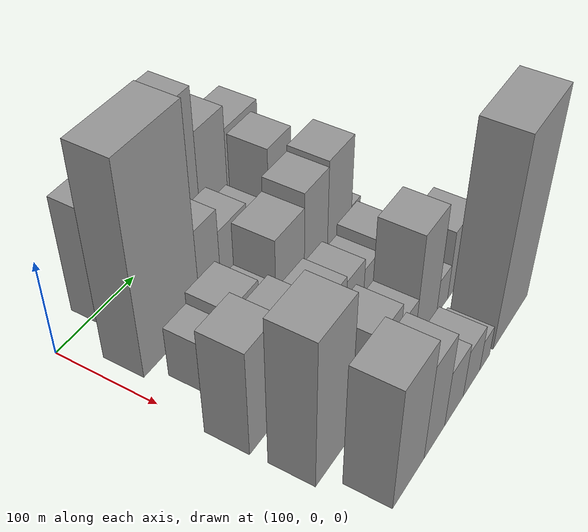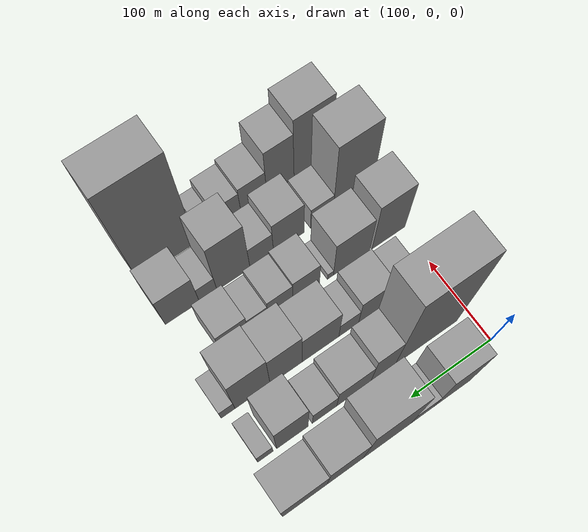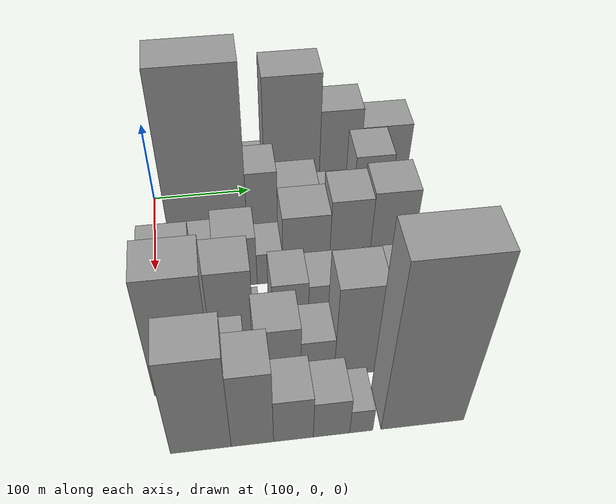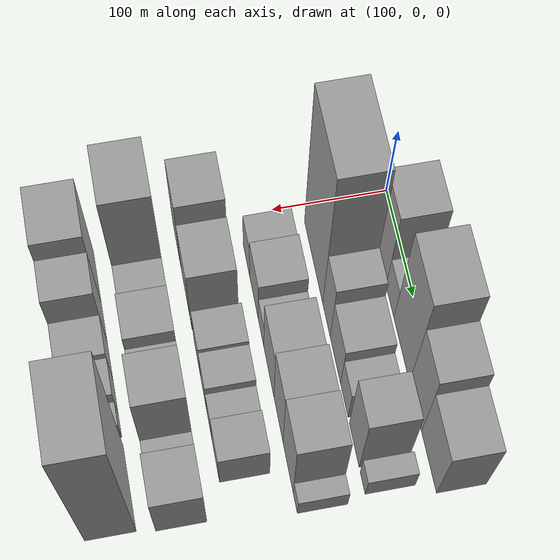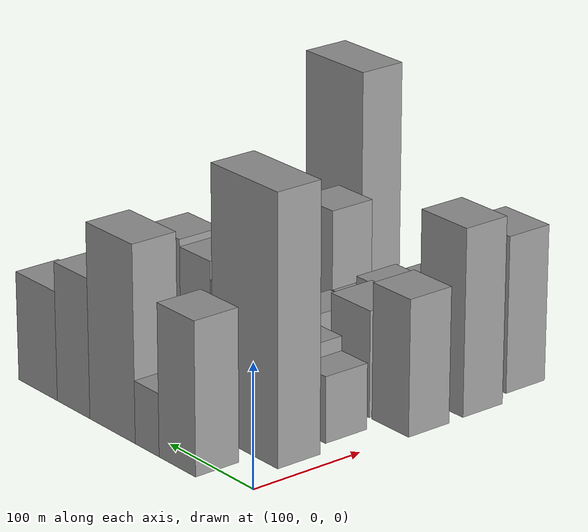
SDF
<sdf version="1.6">
 <world name="default">
  <model name="building_23">
   <static>1</static>
   <pose>100.0000 64.5372 0 0.000000 0.000000 0.000000</pose>
   <link name="link">
    <pose>0 0 61.50 0 0 0</pose>
    <collision name="collision"><geometry><box><size>40.0000 43.9700 123.0000</size></box></geometry></collision>
    <visual name="visual">
     <cast_shadows>0</cast_shadows>
     <geometry><box><size>40.0000 43.9700 123.0000</size></box></geometry>
     <material>
      <script>
       <uri>model://grey_wall/materials/scripts</uri>
       <uri>model://grey_wall/materials/textures</uri>
       <name>vrc/grey_wall</name>
      </script>
     </material>
    </visual>
   </link>
  </model>
  <model name="building_24">
   <static>1</static>
   <pose>100.0000 101.1904 0 0.000000 0.000000 0.000000</pose>
   <link name="link">
    <pose>0 0 25.50 0 0 0</pose>
    <collision name="collision"><geometry><box><size>40.0000 29.3365 51.0000</size></box></geometry></collision>
    <visual name="visual">
     <cast_shadows>0</cast_shadows>
     <geometry><box><size>40.0000 29.3365 51.0000</size></box></geometry>
     <material>
      <script>
       <uri>model://grey_wall/materials/scripts</uri>
       <uri>model://grey_wall/materials/textures</uri>
       <name>vrc/grey_wall</name>
      </script>
     </material>
    </visual>
   </link>
  </model>
  <model name="building_25">
   <static>1</static>
   <pose>100.0000 144.4242 0 0.000000 0.000000 0.000000</pose>
   <link name="link">
    <pose>0 0 79.50 0 0 0</pose>
    <collision name="collision"><geometry><box><size>40.0000 57.1311 159.0000</size></box></geometry></collision>
    <visual name="visual">
     <cast_shadows>0</cast_shadows>
     <geometry><box><size>40.0000 57.1311 159.0000</size></box></geometry>
     <material>
      <script>
       <uri>model://grey_wall/materials/scripts</uri>
       <uri>model://grey_wall/materials/textures</uri>
       <name>vrc/grey_wall</name>
      </script>
     </material>
    </visual>
   </link>
  </model>
  <model name="building_26">
   <static>1</static>
   <pose>100.0000 194.0996 0 0.000000 0.000000 0.000000</pose>
   <link name="link">
    <pose>0 0 57.00 0 0 0</pose>
    <collision name="collision"><geometry><box><size>40.0000 42.2197 114.0000</size></box></geometry></collision>
    <visual name="visual">
     <cast_shadows>0</cast_shadows>
     <geometry><box><size>40.0000 42.2197 114.0000</size></box></geometry>
     <material>
      <script>
       <uri>model://grey_wall/materials/scripts</uri>
       <uri>model://grey_wall/materials/textures</uri>
       <name>vrc/grey_wall</name>
      </script>
     </material>
    </visual>
   </link>
  </model>
  <model name="building_27">
   <static>1</static>
   <pose>100.0000 240.7146 0 0.000000 0.000000 0.000000</pose>
   <link name="link">
    <pose>0 0 45.00 0 0 0</pose>
    <collision name="collision"><geometry><box><size>40.0000 51.0102 90.0000</size></box></geometry></collision>
    <visual name="visual">
     <cast_shadows>0</cast_shadows>
     <geometry><box><size>40.0000 51.0102 90.0000</size></box></geometry>
     <material>
      <script>
       <uri>model://grey_wall/materials/scripts</uri>
       <uri>model://grey_wall/materials/textures</uri>
       <name>vrc/grey_wall</name>
      </script>
     </material>
    </visual>
   </link>
  </model>
  <model name="building_74">
   <static>1</static>
   <pose>155.0000 54.4046 0 0.000000 0.000000 0.000000</pose>
   <link name="link">
    <pose>0 0 108.00 0 0 0</pose>
    <collision name="collision"><geometry><box><size>40.0000 77.1258 216.0000</size></box></geometry></collision>
    <visual name="visual">
     <cast_shadows>0</cast_shadows>
     <geometry><box><size>40.0000 77.1258 216.0000</size></box></geometry>
     <material>
      <script>
       <uri>model://grey_wall/materials/scripts</uri>
       <uri>model://grey_wall/materials/textures</uri>
       <name>vrc/grey_wall</name>
      </script>
     </material>
    </visual>
   </link>
  </model>
  <model name="building_75">
   <static>1</static>
   <pose>155.0000 108.0499 0 0.000000 0.000000 0.000000</pose>
   <link name="link">
    <pose>0 0 46.50 0 0 0</pose>
    <collision name="collision"><geometry><box><size>40.0000 30.1649 93.0000</size></box></geometry></collision>
    <visual name="visual">
     <cast_shadows>0</cast_shadows>
     <geometry><box><size>40.0000 30.1649 93.0000</size></box></geometry>
     <material>
      <script>
       <uri>model://grey_wall/materials/scripts</uri>
       <uri>model://grey_wall/materials/textures</uri>
       <name>vrc/grey_wall</name>
      </script>
     </material>
    </visual>
   </link>
  </model>
  <model name="building_76">
   <static>1</static>
   <pose>155.0000 143.5891 0 0.000000 0.000000 0.000000</pose>
   <link name="link">
    <pose>0 0 34.50 0 0 0</pose>
    <collision name="collision"><geometry><box><size>40.0000 40.9134 69.0000</size></box></geometry></collision>
    <visual name="visual">
     <cast_shadows>0</cast_shadows>
     <geometry><box><size>40.0000 40.9134 69.0000</size></box></geometry>
     <material>
      <script>
       <uri>model://grey_wall/materials/scripts</uri>
       <uri>model://grey_wall/materials/textures</uri>
       <name>vrc/grey_wall</name>
      </script>
     </material>
    </visual>
   </link>
  </model>
  <model name="building_77">
   <static>1</static>
   <pose>155.0000 178.4997 0 0.000000 0.000000 0.000000</pose>
   <link name="link">
    <pose>0 0 25.50 0 0 0</pose>
    <collision name="collision"><geometry><box><size>40.0000 28.9078 51.0000</size></box></geometry></collision>
    <visual name="visual">
     <cast_shadows>0</cast_shadows>
     <geometry><box><size>40.0000 28.9078 51.0000</size></box></geometry>
     <material>
      <script>
       <uri>model://grey_wall/materials/scripts</uri>
       <uri>model://grey_wall/materials/textures</uri>
       <name>vrc/grey_wall</name>
      </script>
     </material>
    </visual>
   </link>
  </model>
  <model name="building_78">
   <static>1</static>
   <pose>155.0000 216.4168 0 0.000000 0.000000 0.000000</pose>
   <link name="link">
    <pose>0 0 51.00 0 0 0</pose>
    <collision name="collision"><geometry><box><size>40.0000 36.9264 102.0000</size></box></geometry></collision>
    <visual name="visual">
     <cast_shadows>0</cast_shadows>
     <geometry><box><size>40.0000 36.9264 102.0000</size></box></geometry>
     <material>
      <script>
       <uri>model://grey_wall/materials/scripts</uri>
       <uri>model://grey_wall/materials/textures</uri>
       <name>vrc/grey_wall</name>
      </script>
     </material>
    </visual>
   </link>
  </model>
  <model name="building_79">
   <static>1</static>
   <pose>155.0000 247.8972 0 0.000000 0.000000 0.000000</pose>
   <link name="link">
    <pose>0 0 16.50 0 0 0</pose>
    <collision name="collision"><geometry><box><size>40.0000 18.0346 33.0000</size></box></geometry></collision>
    <visual name="visual">
     <cast_shadows>0</cast_shadows>
     <geometry><box><size>40.0000 18.0346 33.0000</size></box></geometry>
     <material>
      <script>
       <uri>model://grey_wall/materials/scripts</uri>
       <uri>model://grey_wall/materials/textures</uri>
       <name>vrc/grey_wall</name>
      </script>
     </material>
    </visual>
   </link>
  </model>
  <model name="building_128">
   <static>1</static>
   <pose>210.0000 42.7533 0 0.000000 0.000000 0.000000</pose>
   <link name="link">
    <pose>0 0 27.00 0 0 0</pose>
    <collision name="collision"><geometry><box><size>40.0000 29.8865 54.0000</size></box></geometry></collision>
    <visual name="visual">
     <cast_shadows>0</cast_shadows>
     <geometry><box><size>40.0000 29.8865 54.0000</size></box></geometry>
     <material>
      <script>
       <uri>model://grey_wall/materials/scripts</uri>
       <uri>model://grey_wall/materials/textures</uri>
       <name>vrc/grey_wall</name>
      </script>
     </material>
    </visual>
   </link>
  </model>
  <model name="building_129">
   <static>1</static>
   <pose>210.0000 77.4298 0 0.000000 0.000000 0.000000</pose>
   <link name="link">
    <pose>0 0 33.00 0 0 0</pose>
    <collision name="collision"><geometry><box><size>40.0000 39.4665 66.0000</size></box></geometry></collision>
    <visual name="visual">
     <cast_shadows>0</cast_shadows>
     <geometry><box><size>40.0000 39.4665 66.0000</size></box></geometry>
     <material>
      <script>
       <uri>model://grey_wall/materials/scripts</uri>
       <uri>model://grey_wall/materials/textures</uri>
       <name>vrc/grey_wall</name>
      </script>
     </material>
    </visual>
   </link>
  </model>
  <model name="building_130">
   <static>1</static>
   <pose>210.0000 109.3993 0 0.000000 0.000000 0.000000</pose>
   <link name="link">
    <pose>0 0 21.00 0 0 0</pose>
    <collision name="collision"><geometry><box><size>40.0000 24.4725 42.0000</size></box></geometry></collision>
    <visual name="visual">
     <cast_shadows>0</cast_shadows>
     <geometry><box><size>40.0000 24.4725 42.0000</size></box></geometry>
     <material>
      <script>
       <uri>model://grey_wall/materials/scripts</uri>
       <uri>model://grey_wall/materials/textures</uri>
       <name>vrc/grey_wall</name>
      </script>
     </material>
    </visual>
   </link>
  </model>
  <model name="building_131">
   <static>1</static>
   <pose>210.0000 143.8722 0 0.000000 0.000000 0.000000</pose>
   <link name="link">
    <pose>0 0 43.50 0 0 0</pose>
    <collision name="collision"><geometry><box><size>40.0000 44.4734 87.0000</size></box></geometry></collision>
    <visual name="visual">
     <cast_shadows>0</cast_shadows>
     <geometry><box><size>40.0000 44.4734 87.0000</size></box></geometry>
     <material>
      <script>
       <uri>model://grey_wall/materials/scripts</uri>
       <uri>model://grey_wall/materials/textures</uri>
       <name>vrc/grey_wall</name>
      </script>
     </material>
    </visual>
   </link>
  </model>
  <model name="building_132">
   <static>1</static>
   <pose>210.0000 185.2780 0 0.000000 0.000000 0.000000</pose>
   <link name="link">
    <pose>0 0 51.00 0 0 0</pose>
    <collision name="collision"><geometry><box><size>40.0000 38.3381 102.0000</size></box></geometry></collision>
    <visual name="visual">
     <cast_shadows>0</cast_shadows>
     <geometry><box><size>40.0000 38.3381 102.0000</size></box></geometry>
     <material>
      <script>
       <uri>model://grey_wall/materials/scripts</uri>
       <uri>model://grey_wall/materials/textures</uri>
       <name>vrc/grey_wall</name>
      </script>
     </material>
    </visual>
   </link>
  </model>
  <model name="building_133">
   <static>1</static>
   <pose>210.0000 225.2152 0 0.000000 0.000000 0.000000</pose>
   <link name="link">
    <pose>0 0 54.00 0 0 0</pose>
    <collision name="collision"><geometry><box><size>40.0000 41.5363 108.0000</size></box></geometry></collision>
    <visual name="visual">
     <cast_shadows>0</cast_shadows>
     <geometry><box><size>40.0000 41.5363 108.0000</size></box></geometry>
     <material>
      <script>
       <uri>model://grey_wall/materials/scripts</uri>
       <uri>model://grey_wall/materials/textures</uri>
       <name>vrc/grey_wall</name>
      </script>
     </material>
    </visual>
   </link>
  </model>
  <model name="building_134">
   <static>1</static>
   <pose>210.0000 254.0594 0 0.000000 0.000000 0.000000</pose>
   <link name="link">
    <pose>0 0 15.00 0 0 0</pose>
    <collision name="collision"><geometry><box><size>40.0000 16.1522 30.0000</size></box></geometry></collision>
    <visual name="visual">
     <cast_shadows>0</cast_shadows>
     <geometry><box><size>40.0000 16.1522 30.0000</size></box></geometry>
     <material>
      <script>
       <uri>model://grey_wall/materials/scripts</uri>
       <uri>model://grey_wall/materials/textures</uri>
       <name>vrc/grey_wall</name>
      </script>
     </material>
    </visual>
   </link>
  </model>
  <model name="building_179">
   <static>1</static>
   <pose>265.0000 18.6278 0 0.000000 0.000000 0.000000</pose>
   <link name="link">
    <pose>0 0 55.50 0 0 0</pose>
    <collision name="collision"><geometry><box><size>40.0000 42.2244 111.0000</size></box></geometry></collision>
    <visual name="visual">
     <cast_shadows>0</cast_shadows>
     <geometry><box><size>40.0000 42.2244 111.0000</size></box></geometry>
     <material>
      <script>
       <uri>model://grey_wall/materials/scripts</uri>
       <uri>model://grey_wall/materials/textures</uri>
       <name>vrc/grey_wall</name>
      </script>
     </material>
    </visual>
   </link>
  </model>
  <model name="building_180">
   <static>1</static>
   <pose>265.0000 65.5832 0 0.000000 0.000000 0.000000</pose>
   <link name="link">
    <pose>0 0 43.50 0 0 0</pose>
    <collision name="collision"><geometry><box><size>40.0000 45.6862 87.0000</size></box></geometry></collision>
    <visual name="visual">
     <cast_shadows>0</cast_shadows>
     <geometry><box><size>40.0000 45.6862 87.0000</size></box></geometry>
     <material>
      <script>
       <uri>model://grey_wall/materials/scripts</uri>
       <uri>model://grey_wall/materials/textures</uri>
       <name>vrc/grey_wall</name>
      </script>
     </material>
    </visual>
   </link>
  </model>
  <model name="building_181">
   <static>1</static>
   <pose>265.0000 92.1627 0 0.000000 0.000000 0.000000</pose>
   <link name="link">
    <pose>0 0 7.50 0 0 0</pose>
    <collision name="collision"><geometry><box><size>40.0000 7.4728 15.0000</size></box></geometry></collision>
    <visual name="visual">
     <cast_shadows>0</cast_shadows>
     <geometry><box><size>40.0000 7.4728 15.0000</size></box></geometry>
     <material>
      <script>
       <uri>model://grey_wall/materials/scripts</uri>
       <uri>model://grey_wall/materials/textures</uri>
       <name>vrc/grey_wall</name>
      </script>
     </material>
    </visual>
   </link>
  </model>
  <model name="building_182">
   <static>1</static>
   <pose>265.0000 122.1841 0 0.000000 0.000000 0.000000</pose>
   <link name="link">
    <pose>0 0 31.50 0 0 0</pose>
    <collision name="collision"><geometry><box><size>40.0000 32.5700 63.0000</size></box></geometry></collision>
    <visual name="visual">
     <cast_shadows>0</cast_shadows>
     <geometry><box><size>40.0000 32.5700 63.0000</size></box></geometry>
     <material>
      <script>
       <uri>model://grey_wall/materials/scripts</uri>
       <uri>model://grey_wall/materials/textures</uri>
       <name>vrc/grey_wall</name>
      </script>
     </material>
    </visual>
   </link>
  </model>
  <model name="building_183">
   <static>1</static>
   <pose>265.0000 153.4349 0 0.000000 0.000000 0.000000</pose>
   <link name="link">
    <pose>0 0 28.50 0 0 0</pose>
    <collision name="collision"><geometry><box><size>40.0000 29.9317 57.0000</size></box></geometry></collision>
    <visual name="visual">
     <cast_shadows>0</cast_shadows>
     <geometry><box><size>40.0000 29.9317 57.0000</size></box></geometry>
     <material>
      <script>
       <uri>model://grey_wall/materials/scripts</uri>
       <uri>model://grey_wall/materials/textures</uri>
       <name>vrc/grey_wall</name>
      </script>
     </material>
    </visual>
   </link>
  </model>
  <model name="building_184">
   <static>1</static>
   <pose>265.0000 180.4928 0 0.000000 0.000000 0.000000</pose>
   <link name="link">
    <pose>0 0 22.50 0 0 0</pose>
    <collision name="collision"><geometry><box><size>40.0000 24.1840 45.0000</size></box></geometry></collision>
    <visual name="visual">
     <cast_shadows>0</cast_shadows>
     <geometry><box><size>40.0000 24.1840 45.0000</size></box></geometry>
     <material>
      <script>
       <uri>model://grey_wall/materials/scripts</uri>
       <uri>model://grey_wall/materials/textures</uri>
       <name>vrc/grey_wall</name>
      </script>
     </material>
    </visual>
   </link>
  </model>
  <model name="building_185">
   <static>1</static>
   <pose>265.0000 209.6259 0 0.000000 0.000000 0.000000</pose>
   <link name="link">
    <pose>0 0 28.50 0 0 0</pose>
    <collision name="collision"><geometry><box><size>40.0000 34.0822 57.0000</size></box></geometry></collision>
    <visual name="visual">
     <cast_shadows>0</cast_shadows>
     <geometry><box><size>40.0000 34.0822 57.0000</size></box></geometry>
     <material>
      <script>
       <uri>model://grey_wall/materials/scripts</uri>
       <uri>model://grey_wall/materials/textures</uri>
       <name>vrc/grey_wall</name>
      </script>
     </material>
    </visual>
   </link>
  </model>
  <model name="building_230">
   <static>1</static>
   <pose>320.0000 23.9792 0 0.000000 0.000000 0.000000</pose>
   <link name="link">
    <pose>0 0 76.50 0 0 0</pose>
    <collision name="collision"><geometry><box><size>40.0000 50.5940 153.0000</size></box></geometry></collision>
    <visual name="visual">
     <cast_shadows>0</cast_shadows>
     <geometry><box><size>40.0000 50.5940 153.0000</size></box></geometry>
     <material>
      <script>
       <uri>model://grey_wall/materials/scripts</uri>
       <uri>model://grey_wall/materials/textures</uri>
       <name>vrc/grey_wall</name>
      </script>
     </material>
    </visual>
   </link>
  </model>
  <model name="building_231">
   <static>1</static>
   <pose>320.0000 63.5781 0 0.000000 0.000000 0.000000</pose>
   <link name="link">
    <pose>0 0 24.00 0 0 0</pose>
    <collision name="collision"><geometry><box><size>40.0000 28.6039 48.0000</size></box></geometry></collision>
    <visual name="visual">
     <cast_shadows>0</cast_shadows>
     <geometry><box><size>40.0000 28.6039 48.0000</size></box></geometry>
     <material>
      <script>
       <uri>model://grey_wall/materials/scripts</uri>
       <uri>model://grey_wall/materials/textures</uri>
       <name>vrc/grey_wall</name>
      </script>
     </material>
    </visual>
   </link>
  </model>
  <model name="building_232">
   <static>1</static>
   <pose>320.0000 105.0578 0 0.000000 0.000000 0.000000</pose>
   <link name="link">
    <pose>0 0 37.50 0 0 0</pose>
    <collision name="collision"><geometry><box><size>40.0000 38.3554 75.0000</size></box></geometry></collision>
    <visual name="visual">
     <cast_shadows>0</cast_shadows>
     <geometry><box><size>40.0000 38.3554 75.0000</size></box></geometry>
     <material>
      <script>
       <uri>model://grey_wall/materials/scripts</uri>
       <uri>model://grey_wall/materials/textures</uri>
       <name>vrc/grey_wall</name>
      </script>
     </material>
    </visual>
   </link>
  </model>
  <model name="building_233">
   <static>1</static>
   <pose>320.0000 138.7681 0 0.000000 0.000000 0.000000</pose>
   <link name="link">
    <pose>0 0 27.00 0 0 0</pose>
    <collision name="collision"><geometry><box><size>40.0000 29.0652 54.0000</size></box></geometry></collision>
    <visual name="visual">
     <cast_shadows>0</cast_shadows>
     <geometry><box><size>40.0000 29.0652 54.0000</size></box></geometry>
     <material>
      <script>
       <uri>model://grey_wall/materials/scripts</uri>
       <uri>model://grey_wall/materials/textures</uri>
       <name>vrc/grey_wall</name>
      </script>
     </material>
    </visual>
   </link>
  </model>
  <model name="building_234">
   <static>1</static>
   <pose>320.0000 173.5642 0 0.000000 0.000000 0.000000</pose>
   <link name="link">
    <pose>0 0 60.00 0 0 0</pose>
    <collision name="collision"><geometry><box><size>40.0000 40.5270 120.0000</size></box></geometry></collision>
    <visual name="visual">
     <cast_shadows>0</cast_shadows>
     <geometry><box><size>40.0000 40.5270 120.0000</size></box></geometry>
     <material>
      <script>
       <uri>model://grey_wall/materials/scripts</uri>
       <uri>model://grey_wall/materials/textures</uri>
       <name>vrc/grey_wall</name>
      </script>
     </material>
    </visual>
   </link>
  </model>
  <model name="building_235">
   <static>1</static>
   <pose>320.0000 204.4089 0 0.000000 0.000000 0.000000</pose>
   <link name="link">
    <pose>0 0 19.50 0 0 0</pose>
    <collision name="collision"><geometry><box><size>40.0000 21.1623 39.0000</size></box></geometry></collision>
    <visual name="visual">
     <cast_shadows>0</cast_shadows>
     <geometry><box><size>40.0000 21.1623 39.0000</size></box></geometry>
     <material>
      <script>
       <uri>model://grey_wall/materials/scripts</uri>
       <uri>model://grey_wall/materials/textures</uri>
       <name>vrc/grey_wall</name>
      </script>
     </material>
    </visual>
   </link>
  </model>
  <model name="building_236">
   <static>1</static>
   <pose>320.0000 235.3920 0 0.000000 0.000000 0.000000</pose>
   <link name="link">
    <pose>0 0 37.50 0 0 0</pose>
    <collision name="collision"><geometry><box><size>40.0000 40.8041 75.0000</size></box></geometry></collision>
    <visual name="visual">
     <cast_shadows>0</cast_shadows>
     <geometry><box><size>40.0000 40.8041 75.0000</size></box></geometry>
     <material>
      <script>
       <uri>model://grey_wall/materials/scripts</uri>
       <uri>model://grey_wall/materials/textures</uri>
       <name>vrc/grey_wall</name>
      </script>
     </material>
    </visual>
   </link>
  </model>
  <model name="building_282">
   <static>1</static>
   <pose>375.0000 35.5664 0 0.000000 0.000000 0.000000</pose>
   <link name="link">
    <pose>0 0 64.50 0 0 0</pose>
    <collision name="collision"><geometry><box><size>40.0000 48.9638 129.0000</size></box></geometry></collision>
    <visual name="visual">
     <cast_shadows>0</cast_shadows>
     <geometry><box><size>40.0000 48.9638 129.0000</size></box></geometry>
     <material>
      <script>
       <uri>model://grey_wall/materials/scripts</uri>
       <uri>model://grey_wall/materials/textures</uri>
       <name>vrc/grey_wall</name>
      </script>
     </material>
    </visual>
   </link>
  </model>
  <model name="building_283">
   <static>1</static>
   <pose>375.0000 77.2896 0 0.000000 0.000000 0.000000</pose>
   <link name="link">
    <pose>0 0 51.00 0 0 0</pose>
    <collision name="collision"><geometry><box><size>40.0000 34.4825 102.0000</size></box></geometry></collision>
    <visual name="visual">
     <cast_shadows>0</cast_shadows>
     <geometry><box><size>40.0000 34.4825 102.0000</size></box></geometry>
     <material>
      <script>
       <uri>model://grey_wall/materials/scripts</uri>
       <uri>model://grey_wall/materials/textures</uri>
       <name>vrc/grey_wall</name>
      </script>
     </material>
    </visual>
   </link>
  </model>
  <model name="building_284">
   <static>1</static>
   <pose>375.0000 110.8219 0 0.000000 0.000000 0.000000</pose>
   <link name="link">
    <pose>0 0 30.00 0 0 0</pose>
    <collision name="collision"><geometry><box><size>40.0000 32.5821 60.0000</size></box></geometry></collision>
    <visual name="visual">
     <cast_shadows>0</cast_shadows>
     <geometry><box><size>40.0000 32.5821 60.0000</size></box></geometry>
     <material>
      <script>
       <uri>model://grey_wall/materials/scripts</uri>
       <uri>model://grey_wall/materials/textures</uri>
       <name>vrc/grey_wall</name>
      </script>
     </material>
    </visual>
   </link>
  </model>
  <model name="building_285">
   <static>1</static>
   <pose>375.0000 142.2285 0 0.000000 0.000000 0.000000</pose>
   <link name="link">
    <pose>0 0 25.50 0 0 0</pose>
    <collision name="collision"><geometry><box><size>40.0000 30.2310 51.0000</size></box></geometry></collision>
    <visual name="visual">
     <cast_shadows>0</cast_shadows>
     <geometry><box><size>40.0000 30.2310 51.0000</size></box></geometry>
     <material>
      <script>
       <uri>model://grey_wall/materials/scripts</uri>
       <uri>model://grey_wall/materials/textures</uri>
       <name>vrc/grey_wall</name>
      </script>
     </material>
    </visual>
   </link>
  </model>
  <model name="building_286">
   <static>1</static>
   <pose>375.0000 166.9205 0 0.000000 0.000000 0.000000</pose>
   <link name="link">
    <pose>0 0 16.50 0 0 0</pose>
    <collision name="collision"><geometry><box><size>40.0000 19.1531 33.0000</size></box></geometry></collision>
    <visual name="visual">
     <cast_shadows>0</cast_shadows>
     <geometry><box><size>40.0000 19.1531 33.0000</size></box></geometry>
     <material>
      <script>
       <uri>model://grey_wall/materials/scripts</uri>
       <uri>model://grey_wall/materials/textures</uri>
       <name>vrc/grey_wall</name>
      </script>
     </material>
    </visual>
   </link>
  </model>
  <model name="building_287">
   <static>1</static>
   <pose>375.0000 218.4012 0 0.000000 0.000000 0.000000</pose>
   <link name="link">
    <pose>0 0 106.50 0 0 0</pose>
    <collision name="collision"><geometry><box><size>40.0000 69.8081 213.0000</size></box></geometry></collision>
    <visual name="visual">
     <cast_shadows>0</cast_shadows>
     <geometry><box><size>40.0000 69.8081 213.0000</size></box></geometry>
     <material>
      <script>
       <uri>model://grey_wall/materials/scripts</uri>
       <uri>model://grey_wall/materials/textures</uri>
       <name>vrc/grey_wall</name>
      </script>
     </material>
    </visual>
   </link>
  </model>
 </world>
</sdf>
